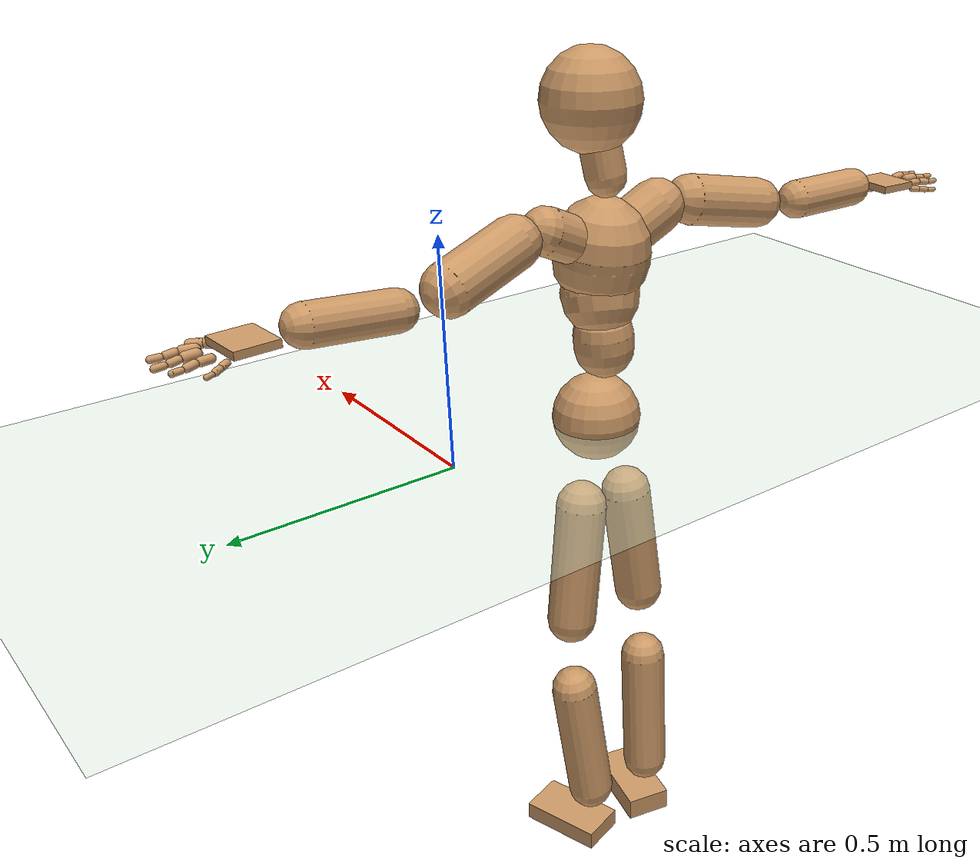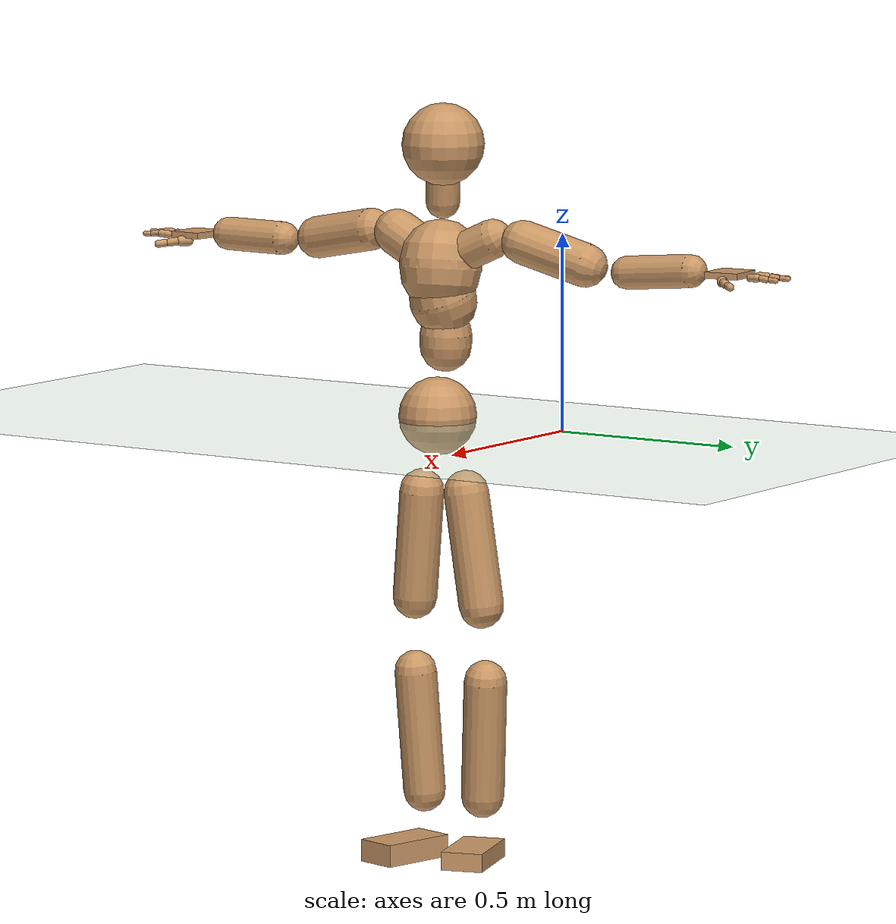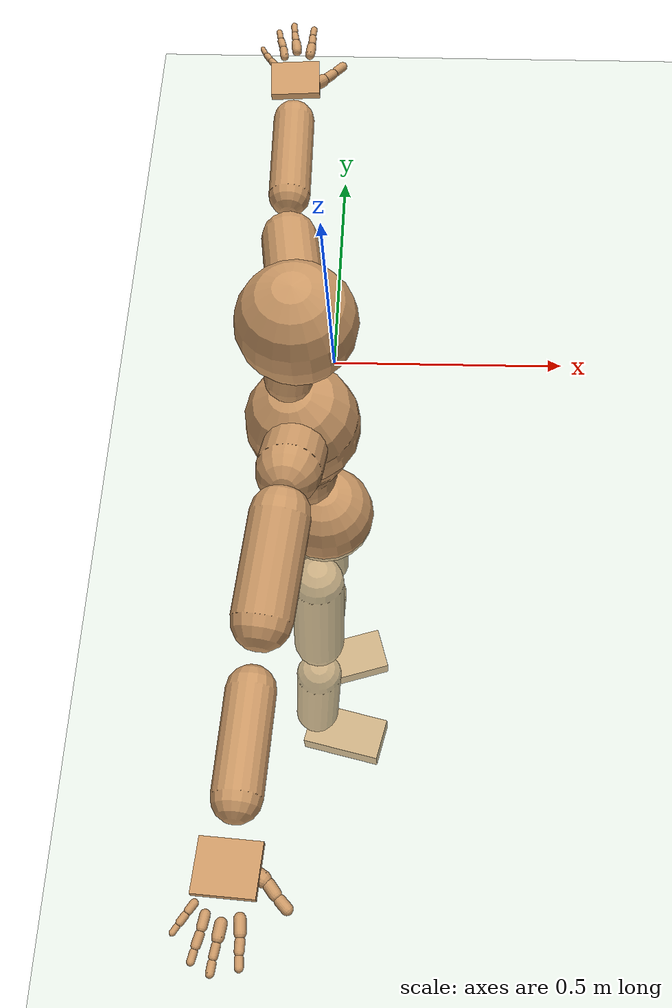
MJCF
<mujoco model="humanoid">
  <compiler coordinate="local" angle="radian"/>
  <default>
    <joint damping="0.0" armature="0.01" stiffness="0.0" limited="true"/>
    <geom conaffinity="1" condim="3" contype="7" margin="0.001" rgba="0.8 0.6 .4 1"/>
  </default>
  <asset>
    <texture type="skybox" builtin="gradient" rgb1=".4 .5 .6" rgb2="0 0 0" width="100" height="100"/>
    <texture builtin="flat" height="1278" mark="cross" markrgb="1 1 1" name="texgeom" random="0.01" rgb1="0.8 0.6 0.4" rgb2="0.8 0.6 0.4" type="cube" width="127"/>
    <texture builtin="checker" height="100" name="texplane" rgb1="0 0 0" rgb2="0.8 0.8 0.8" type="2d" width="100"/>
    <material name="MatPlane" reflectance="0.5" shininess="1" specular="1" texrepeat="60 60" texture="texplane"/>
    <material name="geom" texture="texgeom" texuniform="true"/>
  </asset>
  <worldbody>
    <light cutoff="100" diffuse="1 1 1" dir="-0 0 -1.3" directional="true" exponent="1" pos="0 0 1.3" specular=".1 .1 .1"/>
    <geom conaffinity="1" condim="3" name="floor" pos="0 0 0" rgba="0.8 0.9 0.8 1" size="100 100 .2" type="plane" material="MatPlane"/>
    <body name="Pelvis" pos="0.0009 -0.378 0.0106">
      <freejoint name="Pelvis"/>
      <geom type="sphere" contype="1" conaffinity="1" density="500" size="0.1002" pos="0.0000 0.0000 0.0000" name="Pelvis"/>
      <body name="L_Hip" pos="-0.0268 0.0546 -0.0993">
        <joint name="L_Hip_x" type="hinge" pos="0 0 0" axis="1 0 0" stiffness="800" damping="80" armature="0.02" range="-180.0000 180.0000"/>
        <joint name="L_Hip_y" type="hinge" pos="0 0 0" axis="0 1 0" stiffness="800" damping="80" armature="0.02" range="-180.0000 180.0000"/>
        <joint name="L_Hip_z" type="hinge" pos="0 0 0" axis="0 0 1" stiffness="800" damping="80" armature="0.02" range="-180.0000 180.0000"/>
        <geom type="capsule" contype="1" conaffinity="1" density="500" fromto="-0.0030 0.0134 -0.0970 -0.0119 0.0538 -0.3882" size="0.0581" name="L_Hip"/>
        <body name="L_Knee" pos="-0.0149 0.0672 -0.4852">
          <joint name="L_Knee_x" type="hinge" pos="0 0 0" axis="1 0 0" stiffness="800" damping="80" armature="0.02" range="-180.0000 180.0000"/>
          <joint name="L_Knee_y" type="hinge" pos="0 0 0" axis="0 1 0" stiffness="800" damping="80" armature="0.02" range="-180.0000 180.0000"/>
          <joint name="L_Knee_z" type="hinge" pos="0 0 0" axis="0 0 1" stiffness="800" damping="80" armature="0.02" range="-180.0000 180.0000"/>
          <geom type="capsule" contype="1" conaffinity="1" density="500" fromto="-0.0090 -0.0087 -0.1023 -0.0361 -0.0348 -0.4091" size="0.0554" name="L_Knee"/>
          <body name="L_Ankle" pos="-0.0452 -0.0436 -0.5114">
            <joint name="L_Ankle_x" type="hinge" pos="0 0 0" axis="1 0 0" stiffness="800" damping="80" armature="0.02" range="-180.0000 180.0000"/>
            <joint name="L_Ankle_y" type="hinge" pos="0 0 0" axis="0 1 0" stiffness="800" damping="80" armature="0.02" range="-180.0000 180.0000"/>
            <joint name="L_Ankle_z" type="hinge" pos="0 0 0" axis="0 0 1" stiffness="800" damping="80" armature="0.02" range="-180.0000 180.0000"/>
            <geom type="box" contype="1" conaffinity="1" density="500" pos="0.0745 0.0226 -0.0373" size="0.1018 0.0545 0.0237" quat="0.9892 0.0000 0.0000 0.1466" name="L_Ankle"/>
            <body name="L_Toe" pos="0.1491 0.0452 -0.0745">
              <joint name="L_Toe_x" type="hinge" pos="0 0 0" axis="1 0 0" stiffness="500" damping="50" armature="0.02" range="-180.0000 180.0000"/>
              <joint name="L_Toe_y" type="hinge" pos="0 0 0" axis="0 1 0" stiffness="500" damping="50" armature="0.02" range="-180.0000 180.0000"/>
              <joint name="L_Toe_z" type="hinge" pos="0 0 0" axis="0 0 1" stiffness="500" damping="50" armature="0.02" range="-180.0000 180.0000"/>
              <geom type="box" contype="1" conaffinity="1" density="500" pos="0.0000 0.0000 0.0358" size="0.001 0.0026 0.0011" quat="0.9886 0.0000 0.0000 0.1507" name="L_Toe"/>
            </body>
          </body>
        </body>
      </body>
      <body name="R_Hip" pos="-0.0216 -0.0562 -0.1099">
        <joint name="R_Hip_x" type="hinge" pos="0 0 0" axis="1 0 0" stiffness="800" damping="80" armature="0.02" range="-180.0000 180.0000"/>
        <joint name="R_Hip_y" type="hinge" pos="0 0 0" axis="0 1 0" stiffness="800" damping="80" armature="0.02" range="-180.0000 180.0000"/>
        <joint name="R_Hip_z" type="hinge" pos="0 0 0" axis="0 0 1" stiffness="800" damping="80" armature="0.02" range="-180.0000 180.0000"/>
        <geom type="capsule" contype="1" conaffinity="1" density="500" fromto="-0.0043 -0.0102 -0.0930 -0.0173 -0.0407 -0.3721" size="0.0575" name="R_Hip"/>
        <body name="R_Knee" pos="-0.0217 -0.0509 -0.4651">
          <joint name="R_Knee_x" type="hinge" pos="0 0 0" axis="1 0 0" stiffness="800" damping="80" armature="0.02" range="-180.0000 180.0000"/>
          <joint name="R_Knee_y" type="hinge" pos="0 0 0" axis="0 1 0" stiffness="800" damping="80" armature="0.02" range="-180.0000 180.0000"/>
          <joint name="R_Knee_z" type="hinge" pos="0 0 0" axis="0 0 1" stiffness="800" damping="80" armature="0.02" range="-180.0000 180.0000"/>
          <geom type="capsule" contype="1" conaffinity="1" density="500" fromto="-0.0085 0.0033 -0.1059 -0.0341 0.0132 -0.4235" size="0.0546" name="R_Knee"/>
          <body name="R_Ankle" pos="-0.0426 0.0165 -0.5293">
            <joint name="R_Ankle_x" type="hinge" pos="0 0 0" axis="1 0 0" stiffness="800" damping="80" armature="0.02" range="-180.0000 180.0000"/>
            <joint name="R_Ankle_y" type="hinge" pos="0 0 0" axis="0 1 0" stiffness="800" damping="80" armature="0.02" range="-180.0000 180.0000"/>
            <joint name="R_Ankle_z" type="hinge" pos="0 0 0" axis="0 0 1" stiffness="800" damping="80" armature="0.02" range="-180.0000 180.0000"/>
            <geom type="box" contype="1" conaffinity="1" density="500" pos="0.0778 -0.0183 -0.0362" size="0.1018 0.0545 0.0288" quat="0.9933 0.0000 0.0000 -0.1154" name="R_Ankle"/>
            <body name="R_Toe" pos="0.1556 -0.0366 -0.0725">
              <joint name="R_Toe_x" type="hinge" pos="0 0 0" axis="1 0 0" stiffness="500" damping="50" armature="0.02" range="-180.0000 180.0000"/>
              <joint name="R_Toe_y" type="hinge" pos="0 0 0" axis="0 1 0" stiffness="500" damping="50" armature="0.02" range="-180.0000 180.0000"/>
              <joint name="R_Toe_z" type="hinge" pos="0 0 0" axis="0 0 1" stiffness="500" damping="50" armature="0.02" range="-180.0000 180.0000"/>
              <geom type="box" contype="1" conaffinity="1" density="500" pos="0.0000 0.0000 0.0297" size="0.001 0.0026 0.0011" quat="0.9942 0.0000 0.0000 -0.1080" name="R_Toe"/>
            </body>
          </body>
        </body>
      </body>
      <body name="Torso" pos="-0.0345 -0.0009 0.1164">
        <joint name="Torso_x" type="hinge" pos="0 0 0" axis="1 0 0" stiffness="1000" damping="100" armature="0.02" range="-180.0000 180.0000"/>
        <joint name="Torso_y" type="hinge" pos="0 0 0" axis="0 1 0" stiffness="1000" damping="100" armature="0.02" range="-180.0000 180.0000"/>
        <joint name="Torso_z" type="hinge" pos="0 0 0" axis="0 0 1" stiffness="1000" damping="100" armature="0.02" range="-180.0000 180.0000"/>
        <geom type="capsule" contype="1" conaffinity="1" density="500" fromto="0.0028 0.0051 0.0914 0.0018 0.0034 0.0609" size="0.0667" name="Torso"/>
        <body name="Spine" pos="0.0046 0.0085 0.1523">
          <joint name="Spine_x" type="hinge" pos="0 0 0" axis="1 0 0" stiffness="1000" damping="100" armature="0.02" range="-180.0000 180.0000"/>
          <joint name="Spine_y" type="hinge" pos="0 0 0" axis="0 1 0" stiffness="1000" damping="100" armature="0.02" range="-180.0000 180.0000"/>
          <joint name="Spine_z" type="hinge" pos="0 0 0" axis="0 0 1" stiffness="1000" damping="100" armature="0.02" range="-180.0000 180.0000"/>
          <geom type="capsule" contype="1" conaffinity="1" density="500" fromto="0.0120 -0.0052 0.0353 0.0080 -0.0034 0.0235" size="0.0864" name="Spine"/>
          <body name="Chest" pos="0.02 -0.0086 0.0588">
            <joint name="Chest_x" type="hinge" pos="0 0 0" axis="1 0 0" stiffness="1000" damping="100" armature="0.02" range="-180.0000 180.0000"/>
            <joint name="Chest_y" type="hinge" pos="0 0 0" axis="0 1 0" stiffness="1000" damping="100" armature="0.02" range="-180.0000 180.0000"/>
            <joint name="Chest_z" type="hinge" pos="0 0 0" axis="0 0 1" stiffness="1000" damping="100" armature="0.02" range="-180.0000 180.0000"/>
            <geom type="capsule" contype="1" conaffinity="1" density="500" fromto="-0.0094 -0.0018 0.0693 -0.0063 -0.0012 0.0462" size="0.1061" name="Chest"/>
            <body name="Neck" pos="-0.0274 -0.0079 0.182">
              <joint name="Neck_x" type="hinge" pos="0 0 0" axis="1 0 0" stiffness="500" damping="50" armature="0.02" range="-180.0000 180.0000"/>
              <joint name="Neck_y" type="hinge" pos="0 0 0" axis="0 1 0" stiffness="500" damping="50" armature="0.02" range="-180.0000 180.0000"/>
              <joint name="Neck_z" type="hinge" pos="0 0 0" axis="0 0 1" stiffness="500" damping="50" armature="0.02" range="-180.0000 180.0000"/>
              <geom type="capsule" contype="1" conaffinity="1" density="500" fromto="0.0061 0.0043 0.0371 0.0244 0.0173 0.1484" size="0.0439" name="Neck"/>
              <body name="Head" pos="0.0305 0.0216 0.1855">
                <joint name="Head_x" type="hinge" pos="0 0 0" axis="1 0 0" stiffness="500" damping="50" armature="0.02" range="-180.0000 180.0000"/>
                <joint name="Head_y" type="hinge" pos="0 0 0" axis="0 1 0" stiffness="500" damping="50" armature="0.02" range="-180.0000 180.0000"/>
                <joint name="Head_z" type="hinge" pos="0 0 0" axis="0 0 1" stiffness="500" damping="50" armature="0.02" range="-180.0000 180.0000"/>
                <geom type="sphere" contype="1" conaffinity="1" density="500" size="0.1054" pos="0.0000 0.0000 0.0000" name="Head"/>
              </body>
            </body>
            <body name="L_Thorax" pos="-0.0079 0.0418 0.0821">
              <joint name="L_Thorax_x" type="hinge" pos="0 0 0" axis="1 0 0" stiffness="500" damping="50" armature="0.02" range="-180.0000 180.0000"/>
              <joint name="L_Thorax_y" type="hinge" pos="0 0 0" axis="0 1 0" stiffness="500" damping="50" armature="0.02" range="-180.0000 180.0000"/>
              <joint name="L_Thorax_z" type="hinge" pos="0 0 0" axis="0 0 1" stiffness="500" damping="50" armature="0.02" range="-180.0000 180.0000"/>
              <geom type="capsule" contype="1" conaffinity="1" density="500" fromto="-0.0029 0.0269 0.0126 -0.0116 0.1076 0.0505" size="0.0507" name="L_Thorax"/>
              <body name="L_Shoulder" pos="-0.0144 0.1345 0.0631">
                <joint name="L_Shoulder_x" type="hinge" pos="0 0 0" axis="1 0 0" stiffness="500" damping="50" armature="0.02" range="-180.0000 180.0000"/>
                <joint name="L_Shoulder_y" type="hinge" pos="0 0 0" axis="0 1 0" stiffness="500" damping="50" armature="0.02" range="-180.0000 180.0000"/>
                <joint name="L_Shoulder_z" type="hinge" pos="0 0 0" axis="0 0 1" stiffness="500" damping="50" armature="0.02" range="-180.0000 180.0000"/>
                <geom type="capsule" contype="1" conaffinity="1" density="500" fromto="-0.0091 0.0568 -0.0169 -0.0362 0.2274 -0.0676" size="0.0558" name="L_Shoulder"/>
                <body name="L_Elbow" pos="-0.0453 0.2842 -0.0845">
                  <joint name="L_Elbow_x" type="hinge" pos="0 0 0" axis="1 0 0" stiffness="500" damping="50" armature="0.02" range="-720.0000 720.0000"/>
                  <joint name="L_Elbow_y" type="hinge" pos="0 0 0" axis="0 1 0" stiffness="500" damping="50" armature="0.02" range="-720.0000 720.0000"/>
                  <joint name="L_Elbow_z" type="hinge" pos="0 0 0" axis="0 0 1" stiffness="500" damping="50" armature="0.02" range="-720.0000 720.0000"/>
                  <geom type="capsule" contype="1" conaffinity="1" density="500" fromto="-0.0005 0.0613 0.0052 -0.0020 0.2452 0.0209" size="0.0421" name="L_Elbow"/>
                  <body name="L_Wrist" pos="-0.0025 0.3065 0.0261">
                    <joint name="L_Wrist_x" type="hinge" pos="0 0 0" axis="1 0 0" stiffness="300" damping="30" armature="0.02" range="-180.0000 180.0000"/>
                    <joint name="L_Wrist_y" type="hinge" pos="0 0 0" axis="0 1 0" stiffness="300" damping="30" armature="0.02" range="-180.0000 180.0000"/>
                    <joint name="L_Wrist_z" type="hinge" pos="0 0 0" axis="0 0 1" stiffness="300" damping="30" armature="0.02" range="-180.0000 180.0000"/>
                    <geom type="box" contype="1" conaffinity="1" density="500" pos="-0.0034 0.0507 -0.0060" size="0.0446 0.0504 0.008" quat="0.7303 0.0000 0.0000 -0.6832" name="L_Wrist"/>
                    <body name="L_Index1" pos="0.0215 0.1184 -0.0086">
                      <joint name="L_Index1_x" type="hinge" pos="0 0 0" axis="1 0 0" stiffness="100" damping="10" armature="0.02" range="-180.0000 180.0000"/>
                      <joint name="L_Index1_y" type="hinge" pos="0 0 0" axis="0 1 0" stiffness="100" damping="10" armature="0.02" range="-180.0000 180.0000"/>
                      <joint name="L_Index1_z" type="hinge" pos="0 0 0" axis="0 0 1" stiffness="100" damping="10" armature="0.02" range="-180.0000 180.0000"/>
                      <geom type="capsule" contype="1" conaffinity="1" density="500" fromto="0.0007 0.0071 0.0004 0.0030 0.0283 0.0014" size="0.0099" name="L_Index1"/>
                      <body name="L_Index2" pos="0.0037 0.0354 0.0018">
                        <joint name="L_Index2_x" type="hinge" pos="0 0 0" axis="1 0 0" stiffness="100" damping="10" armature="0.02" range="-180.0000 180.0000"/>
                        <joint name="L_Index2_y" type="hinge" pos="0 0 0" axis="0 1 0" stiffness="100" damping="10" armature="0.02" range="-180.0000 180.0000"/>
                        <joint name="L_Index2_z" type="hinge" pos="0 0 0" axis="0 0 1" stiffness="100" damping="10" armature="0.02" range="-180.0000 180.0000"/>
                        <geom type="capsule" contype="1" conaffinity="1" density="500" fromto="-0.0000 0.0050 -0.0005 -0.0001 0.0200 -0.0022" size="0.0081" name="L_Index2"/>
                        <body name="L_Index3" pos="-0.0001 0.025 -0.0027">
                          <joint name="L_Index3_x" type="hinge" pos="0 0 0" axis="1 0 0" stiffness="100" damping="10" armature="0.02" range="-180.0000 180.0000"/>
                          <joint name="L_Index3_y" type="hinge" pos="0 0 0" axis="0 1 0" stiffness="100" damping="10" armature="0.02" range="-180.0000 180.0000"/>
                          <joint name="L_Index3_z" type="hinge" pos="0 0 0" axis="0 0 1" stiffness="100" damping="10" armature="0.02" range="-180.0000 180.0000"/>
                          <geom type="capsule" contype="1" conaffinity="1" density="500" fromto="0.0004 0.0054 -0.0001 0.0015 0.0216 -0.0006" size="0.0069" name="L_Index3"/>
                        </body>
                      </body>
                    </body>
                    <body name="L_Middle1" pos="-0.0048 0.1271 -0.0061">
                      <joint name="L_Middle1_x" type="hinge" pos="0 0 0" axis="1 0 0" stiffness="100" damping="10" armature="0.02" range="-180.0000 180.0000"/>
                      <joint name="L_Middle1_y" type="hinge" pos="0 0 0" axis="0 1 0" stiffness="100" damping="10" armature="0.02" range="-180.0000 180.0000"/>
                      <joint name="L_Middle1_z" type="hinge" pos="0 0 0" axis="0 0 1" stiffness="100" damping="10" armature="0.02" range="-180.0000 180.0000"/>
                      <geom type="capsule" contype="1" conaffinity="1" density="500" fromto="-0.0010 0.0068 0.0001 -0.0039 0.0270 0.0003" size="0.0101" name="L_Middle1"/>
                      <body name="L_Middle2" pos="-0.0049 0.0338 0.0003">
                        <joint name="L_Middle2_x" type="hinge" pos="0 0 0" axis="1 0 0" stiffness="100" damping="10" armature="0.02" range="-180.0000 180.0000"/>
                        <joint name="L_Middle2_y" type="hinge" pos="0 0 0" axis="0 1 0" stiffness="100" damping="10" armature="0.02" range="-180.0000 180.0000"/>
                        <joint name="L_Middle2_z" type="hinge" pos="0 0 0" axis="0 0 1" stiffness="100" damping="10" armature="0.02" range="-180.0000 180.0000"/>
                        <geom type="capsule" contype="1" conaffinity="1" density="500" fromto="-0.0009 0.0052 -0.0006 -0.0038 0.0209 -0.0022" size="0.0074" name="L_Middle2"/>
                        <body name="L_Middle3" pos="-0.0047 0.0261 -0.0028">
                          <joint name="L_Middle3_x" type="hinge" pos="0 0 0" axis="1 0 0" stiffness="100" damping="10" armature="0.02" range="-180.0000 180.0000"/>
                          <joint name="L_Middle3_y" type="hinge" pos="0 0 0" axis="0 1 0" stiffness="100" damping="10" armature="0.02" range="-180.0000 180.0000"/>
                          <joint name="L_Middle3_z" type="hinge" pos="0 0 0" axis="0 0 1" stiffness="100" damping="10" armature="0.02" range="-180.0000 180.0000"/>
                          <geom type="capsule" contype="1" conaffinity="1" density="500" fromto="-0.0005 0.0056 -0.0002 -0.0022 0.0225 -0.0006" size="0.0067" name="L_Middle3"/>
                        </body>
                      </body>
                    </body>
                    <body name="L_Pinky1" pos="-0.049 0.0992 -0.0154">
                      <joint name="L_Pinky1_x" type="hinge" pos="0 0 0" axis="1 0 0" stiffness="100" damping="10" armature="0.02" range="-180.0000 180.0000"/>
                      <joint name="L_Pinky1_y" type="hinge" pos="0 0 0" axis="0 1 0" stiffness="100" damping="10" armature="0.02" range="-180.0000 180.0000"/>
                      <joint name="L_Pinky1_z" type="hinge" pos="0 0 0" axis="0 0 1" stiffness="100" damping="10" armature="0.02" range="-180.0000 180.0000"/>
                      <geom type="capsule" contype="1" conaffinity="1" density="500" fromto="-0.0025 0.0035 -0.0003 -0.0101 0.0142 -0.0013" size="0.0071" name="L_Pinky1"/>
                      <body name="L_Pinky2" pos="-0.0126 0.0177 -0.0016">
                        <joint name="L_Pinky2_x" type="hinge" pos="0 0 0" axis="1 0 0" stiffness="100" damping="10" armature="0.02" range="-180.0000 180.0000"/>
                        <joint name="L_Pinky2_y" type="hinge" pos="0 0 0" axis="0 1 0" stiffness="100" damping="10" armature="0.02" range="-180.0000 180.0000"/>
                        <joint name="L_Pinky2_z" type="hinge" pos="0 0 0" axis="0 0 1" stiffness="100" damping="10" armature="0.02" range="-180.0000 180.0000"/>
                        <geom type="capsule" contype="1" conaffinity="1" density="500" fromto="-0.0023 0.0035 -0.0004 -0.0094 0.0139 -0.0015" size="0.0067" name="L_Pinky2"/>
                        <body name="L_Pinky3" pos="-0.0117 0.0174 -0.0019">
                          <joint name="L_Pinky3_x" type="hinge" pos="0 0 0" axis="1 0 0" stiffness="100" damping="10" armature="0.02" range="-180.0000 180.0000"/>
                          <joint name="L_Pinky3_y" type="hinge" pos="0 0 0" axis="0 1 0" stiffness="100" damping="10" armature="0.02" range="-180.0000 180.0000"/>
                          <joint name="L_Pinky3_z" type="hinge" pos="0 0 0" axis="0 0 1" stiffness="100" damping="10" armature="0.02" range="-180.0000 180.0000"/>
                          <geom type="capsule" contype="1" conaffinity="1" density="500" fromto="-0.0019 0.0039 0.0000 -0.0078 0.0155 0.0001" size="0.0051" name="L_Pinky3"/>
                        </body>
                      </body>
                    </body>
                    <body name="L_Ring1" pos="-0.0308 0.114 -0.0095">
                      <joint name="L_Ring1_x" type="hinge" pos="0 0 0" axis="1 0 0" stiffness="100" damping="10" armature="0.02" range="-180.0000 180.0000"/>
                      <joint name="L_Ring1_y" type="hinge" pos="0 0 0" axis="0 1 0" stiffness="100" damping="10" armature="0.02" range="-180.0000 180.0000"/>
                      <joint name="L_Ring1_z" type="hinge" pos="0 0 0" axis="0 0 1" stiffness="100" damping="10" armature="0.02" range="-180.0000 180.0000"/>
                      <geom type="capsule" contype="1" conaffinity="1" density="500" fromto="-0.0011 0.0063 0.0001 -0.0043 0.0251 0.0005" size="0.0085" name="L_Ring1"/>
                      <body name="L_Ring2" pos="-0.0054 0.0314 0.0006">
                        <joint name="L_Ring2_x" type="hinge" pos="0 0 0" axis="1 0 0" stiffness="100" damping="10" armature="0.02" range="-180.0000 180.0000"/>
                        <joint name="L_Ring2_y" type="hinge" pos="0 0 0" axis="0 1 0" stiffness="100" damping="10" armature="0.02" range="-180.0000 180.0000"/>
                        <joint name="L_Ring2_z" type="hinge" pos="0 0 0" axis="0 0 1" stiffness="100" damping="10" armature="0.02" range="-180.0000 180.0000"/>
                        <geom type="capsule" contype="1" conaffinity="1" density="500" fromto="-0.0015 0.0051 -0.0005 -0.0058 0.0203 -0.0020" size="0.0079" name="L_Ring2"/>
                        <body name="L_Ring3" pos="-0.0073 0.0254 -0.0025">
                          <joint name="L_Ring3_x" type="hinge" pos="0 0 0" axis="1 0 0" stiffness="100" damping="10" armature="0.02" range="-180.0000 180.0000"/>
                          <joint name="L_Ring3_y" type="hinge" pos="0 0 0" axis="0 1 0" stiffness="100" damping="10" armature="0.02" range="-180.0000 180.0000"/>
                          <joint name="L_Ring3_z" type="hinge" pos="0 0 0" axis="0 0 1" stiffness="100" damping="10" armature="0.02" range="-180.0000 180.0000"/>
                          <geom type="capsule" contype="1" conaffinity="1" density="500" fromto="-0.0011 0.0055 -0.0001 -0.0042 0.0219 -0.0004" size="0.0062" name="L_Ring3"/>
                        </body>
                      </body>
                    </body>
                    <body name="L_Thumb1" pos="0.0292 0.0481 -0.0204">
                      <joint name="L_Thumb1_x" type="hinge" pos="0 0 0" axis="1 0 0" stiffness="100" damping="10" armature="0.02" range="-180.0000 180.0000"/>
                      <joint name="L_Thumb1_y" type="hinge" pos="0 0 0" axis="0 1 0" stiffness="100" damping="10" armature="0.02" range="-180.0000 180.0000"/>
                      <joint name="L_Thumb1_z" type="hinge" pos="0 0 0" axis="0 0 1" stiffness="100" damping="10" armature="0.02" range="-180.0000 180.0000"/>
                      <geom type="capsule" contype="1" conaffinity="1" density="500" fromto="0.0058 0.0038 0.0003 0.0231 0.0151 0.0011" size="0.0134" name="L_Thumb1"/>
                      <body name="L_Thumb2" pos="0.0288 0.0188 0.0013">
                        <joint name="L_Thumb2_x" type="hinge" pos="0 0 0" axis="1 0 0" stiffness="100" damping="10" armature="0.02" range="-180.0000 180.0000"/>
                        <joint name="L_Thumb2_y" type="hinge" pos="0 0 0" axis="0 1 0" stiffness="100" damping="10" armature="0.02" range="-180.0000 180.0000"/>
                        <joint name="L_Thumb2_z" type="hinge" pos="0 0 0" axis="0 0 1" stiffness="100" damping="10" armature="0.02" range="-180.0000 180.0000"/>
                        <geom type="capsule" contype="1" conaffinity="1" density="500" fromto="0.0036 0.0046 -0.0009 0.0145 0.0184 -0.0038" size="0.0105" name="L_Thumb2"/>
                        <body name="L_Thumb3" pos="0.0181 0.023 -0.0047">
                          <joint name="L_Thumb3_x" type="hinge" pos="0 0 0" axis="1 0 0" stiffness="100" damping="10" armature="0.02" range="-180.0000 180.0000"/>
                          <joint name="L_Thumb3_y" type="hinge" pos="0 0 0" axis="0 1 0" stiffness="100" damping="10" armature="0.02" range="-180.0000 180.0000"/>
                          <joint name="L_Thumb3_z" type="hinge" pos="0 0 0" axis="0 0 1" stiffness="100" damping="10" armature="0.02" range="-180.0000 180.0000"/>
                          <geom type="capsule" contype="1" conaffinity="1" density="500" fromto="0.0040 0.0050 -0.0005 0.0161 0.0200 -0.0022" size="0.0096" name="L_Thumb3"/>
                        </body>
                      </body>
                    </body>
                  </body>
                </body>
              </body>
            </body>
            <body name="R_Thorax" pos="-0.0119 -0.0431 0.0824">
              <joint name="R_Thorax_x" type="hinge" pos="0 0 0" axis="1 0 0" stiffness="500" damping="50" armature="0.02" range="-180.0000 180.0000"/>
              <joint name="R_Thorax_y" type="hinge" pos="0 0 0" axis="0 1 0" stiffness="500" damping="50" armature="0.02" range="-180.0000 180.0000"/>
              <joint name="R_Thorax_z" type="hinge" pos="0 0 0" axis="0 0 1" stiffness="500" damping="50" armature="0.02" range="-180.0000 180.0000"/>
              <geom type="capsule" contype="1" conaffinity="1" density="500" fromto="-0.0018 -0.0250 0.0125 -0.0073 -0.1000 0.0502" size="0.0594" name="R_Thorax"/>
              <body name="R_Shoulder" pos="-0.0091 -0.125 0.0627">
                <joint name="R_Shoulder_x" type="hinge" pos="0 0 0" axis="1 0 0" stiffness="500" damping="50" armature="0.02" range="-180.0000 180.0000"/>
                <joint name="R_Shoulder_y" type="hinge" pos="0 0 0" axis="0 1 0" stiffness="500" damping="50" armature="0.02" range="-180.0000 180.0000"/>
                <joint name="R_Shoulder_z" type="hinge" pos="0 0 0" axis="0 0 1" stiffness="500" damping="50" armature="0.02" range="-180.0000 180.0000"/>
                <geom type="capsule" contype="1" conaffinity="1" density="500" fromto="-0.0070 -0.0606 -0.0112 -0.0281 -0.2423 -0.0449" size="0.0546" name="R_Shoulder"/>
                <body name="R_Elbow" pos="-0.0351 -0.3029 -0.0561">
                  <joint name="R_Elbow_x" type="hinge" pos="0 0 0" axis="1 0 0" stiffness="500" damping="50" armature="0.02" range="-720.0000 720.0000"/>
                  <joint name="R_Elbow_y" type="hinge" pos="0 0 0" axis="0 1 0" stiffness="500" damping="50" armature="0.02" range="-720.0000 720.0000"/>
                  <joint name="R_Elbow_z" type="hinge" pos="0 0 0" axis="0 0 1" stiffness="500" damping="50" armature="0.02" range="-720.0000 720.0000"/>
                  <geom type="capsule" contype="1" conaffinity="1" density="500" fromto="-0.0027 -0.0593 0.0003 -0.0107 -0.2370 0.0012" size="0.0432" name="R_Elbow"/>
                  <body name="R_Wrist" pos="-0.0134 -0.2963 0.0015">
                    <joint name="R_Wrist_x" type="hinge" pos="0 0 0" axis="1 0 0" stiffness="300" damping="30" armature="0.02" range="-180.0000 180.0000"/>
                    <joint name="R_Wrist_y" type="hinge" pos="0 0 0" axis="0 1 0" stiffness="300" damping="30" armature="0.02" range="-180.0000 180.0000"/>
                    <joint name="R_Wrist_z" type="hinge" pos="0 0 0" axis="0 0 1" stiffness="300" damping="30" armature="0.02" range="-180.0000 180.0000"/>
                    <geom type="box" contype="1" conaffinity="1" density="500" pos="-0.0037 -0.0503 -0.0079" size="0.0446 0.0518 0.0082" quat="0.7328 0.0000 0.0000 0.6805" name="R_Wrist"/>
                    <body name="R_Index1" pos="0.0208 -0.1177 -0.0123">
                      <joint name="R_Index1_x" type="hinge" pos="0 0 0" axis="1 0 0" stiffness="100" damping="10" armature="0.02" range="-180.0000 180.0000"/>
                      <joint name="R_Index1_y" type="hinge" pos="0 0 0" axis="0 1 0" stiffness="100" damping="10" armature="0.02" range="-180.0000 180.0000"/>
                      <joint name="R_Index1_z" type="hinge" pos="0 0 0" axis="0 0 1" stiffness="100" damping="10" armature="0.02" range="-180.0000 180.0000"/>
                      <geom type="capsule" contype="1" conaffinity="1" density="500" fromto="0.0007 -0.0071 0.0004 0.0030 -0.0283 0.0014" size="0.0099" name="R_Index1"/>
                      <body name="R_Index2" pos="0.0037 -0.0354 0.0018">
                        <joint name="R_Index2_x" type="hinge" pos="0 0 0" axis="1 0 0" stiffness="100" damping="10" armature="0.02" range="-180.0000 180.0000"/>
                        <joint name="R_Index2_y" type="hinge" pos="0 0 0" axis="0 1 0" stiffness="100" damping="10" armature="0.02" range="-180.0000 180.0000"/>
                        <joint name="R_Index2_z" type="hinge" pos="0 0 0" axis="0 0 1" stiffness="100" damping="10" armature="0.02" range="-180.0000 180.0000"/>
                        <geom type="capsule" contype="1" conaffinity="1" density="500" fromto="-0.0000 -0.0050 -0.0005 -0.0001 -0.0200 -0.0022" size="0.0081" name="R_Index2"/>
                        <body name="R_Index3" pos="-0.0001 -0.025 -0.0027">
                          <joint name="R_Index3_x" type="hinge" pos="0 0 0" axis="1 0 0" stiffness="100" damping="10" armature="0.02" range="-180.0000 180.0000"/>
                          <joint name="R_Index3_y" type="hinge" pos="0 0 0" axis="0 1 0" stiffness="100" damping="10" armature="0.02" range="-180.0000 180.0000"/>
                          <joint name="R_Index3_z" type="hinge" pos="0 0 0" axis="0 0 1" stiffness="100" damping="10" armature="0.02" range="-180.0000 180.0000"/>
                          <geom type="capsule" contype="1" conaffinity="1" density="500" fromto="0.0004 -0.0046 -0.0001 0.0015 -0.0184 -0.0006" size="0.0072" name="R_Index3"/>
                        </body>
                      </body>
                    </body>
                    <body name="R_Middle1" pos="-0.0055 -0.1264 -0.0098">
                      <joint name="R_Middle1_x" type="hinge" pos="0 0 0" axis="1 0 0" stiffness="100" damping="10" armature="0.02" range="-180.0000 180.0000"/>
                      <joint name="R_Middle1_y" type="hinge" pos="0 0 0" axis="0 1 0" stiffness="100" damping="10" armature="0.02" range="-180.0000 180.0000"/>
                      <joint name="R_Middle1_z" type="hinge" pos="0 0 0" axis="0 0 1" stiffness="100" damping="10" armature="0.02" range="-180.0000 180.0000"/>
                      <geom type="capsule" contype="1" conaffinity="1" density="500" fromto="-0.0010 -0.0068 0.0001 -0.0039 -0.0270 0.0003" size="0.0101" name="R_Middle1"/>
                      <body name="R_Middle2" pos="-0.0049 -0.0338 0.0003">
                        <joint name="R_Middle2_x" type="hinge" pos="0 0 0" axis="1 0 0" stiffness="100" damping="10" armature="0.02" range="-180.0000 180.0000"/>
                        <joint name="R_Middle2_y" type="hinge" pos="0 0 0" axis="0 1 0" stiffness="100" damping="10" armature="0.02" range="-180.0000 180.0000"/>
                        <joint name="R_Middle2_z" type="hinge" pos="0 0 0" axis="0 0 1" stiffness="100" damping="10" armature="0.02" range="-180.0000 180.0000"/>
                        <geom type="capsule" contype="1" conaffinity="1" density="500" fromto="-0.0009 -0.0052 -0.0006 -0.0038 -0.0209 -0.0022" size="0.0074" name="R_Middle2"/>
                        <body name="R_Middle3" pos="-0.0047 -0.0261 -0.0028">
                          <joint name="R_Middle3_x" type="hinge" pos="0 0 0" axis="1 0 0" stiffness="100" damping="10" armature="0.02" range="-180.0000 180.0000"/>
                          <joint name="R_Middle3_y" type="hinge" pos="0 0 0" axis="0 1 0" stiffness="100" damping="10" armature="0.02" range="-180.0000 180.0000"/>
                          <joint name="R_Middle3_z" type="hinge" pos="0 0 0" axis="0 0 1" stiffness="100" damping="10" armature="0.02" range="-180.0000 180.0000"/>
                          <geom type="capsule" contype="1" conaffinity="1" density="500" fromto="-0.0005 -0.0048 -0.0002 -0.0022 -0.0193 -0.0006" size="0.007" name="R_Middle3"/>
                        </body>
                      </body>
                    </body>
                    <body name="R_Pinky1" pos="-0.0497 -0.0985 -0.0191">
                      <joint name="R_Pinky1_x" type="hinge" pos="0 0 0" axis="1 0 0" stiffness="100" damping="10" armature="0.02" range="-180.0000 180.0000"/>
                      <joint name="R_Pinky1_y" type="hinge" pos="0 0 0" axis="0 1 0" stiffness="100" damping="10" armature="0.02" range="-180.0000 180.0000"/>
                      <joint name="R_Pinky1_z" type="hinge" pos="0 0 0" axis="0 0 1" stiffness="100" damping="10" armature="0.02" range="-180.0000 180.0000"/>
                      <geom type="capsule" contype="1" conaffinity="1" density="500" fromto="-0.0025 -0.0035 -0.0003 -0.0101 -0.0142 -0.0013" size="0.0071" name="R_Pinky1"/>
                      <body name="R_Pinky2" pos="-0.0126 -0.0177 -0.0016">
                        <joint name="R_Pinky2_x" type="hinge" pos="0 0 0" axis="1 0 0" stiffness="100" damping="10" armature="0.02" range="-180.0000 180.0000"/>
                        <joint name="R_Pinky2_y" type="hinge" pos="0 0 0" axis="0 1 0" stiffness="100" damping="10" armature="0.02" range="-180.0000 180.0000"/>
                        <joint name="R_Pinky2_z" type="hinge" pos="0 0 0" axis="0 0 1" stiffness="100" damping="10" armature="0.02" range="-180.0000 180.0000"/>
                        <geom type="capsule" contype="1" conaffinity="1" density="500" fromto="-0.0023 -0.0035 -0.0004 -0.0094 -0.0139 -0.0015" size="0.0067" name="R_Pinky2"/>
                        <body name="R_Pinky3" pos="-0.0117 -0.0174 -0.0019">
                          <joint name="R_Pinky3_x" type="hinge" pos="0 0 0" axis="1 0 0" stiffness="100" damping="10" armature="0.02" range="-180.0000 180.0000"/>
                          <joint name="R_Pinky3_y" type="hinge" pos="0 0 0" axis="0 1 0" stiffness="100" damping="10" armature="0.02" range="-180.0000 180.0000"/>
                          <joint name="R_Pinky3_z" type="hinge" pos="0 0 0" axis="0 0 1" stiffness="100" damping="10" armature="0.02" range="-180.0000 180.0000"/>
                          <geom type="capsule" contype="1" conaffinity="1" density="500" fromto="-0.0019 -0.0031 0.0000 -0.0078 -0.0123 0.0001" size="0.0054" name="R_Pinky3"/>
                        </body>
                      </body>
                    </body>
                    <body name="R_Ring1" pos="-0.0315 -0.1133 -0.0132">
                      <joint name="R_Ring1_x" type="hinge" pos="0 0 0" axis="1 0 0" stiffness="100" damping="10" armature="0.02" range="-180.0000 180.0000"/>
                      <joint name="R_Ring1_y" type="hinge" pos="0 0 0" axis="0 1 0" stiffness="100" damping="10" armature="0.02" range="-180.0000 180.0000"/>
                      <joint name="R_Ring1_z" type="hinge" pos="0 0 0" axis="0 0 1" stiffness="100" damping="10" armature="0.02" range="-180.0000 180.0000"/>
                      <geom type="capsule" contype="1" conaffinity="1" density="500" fromto="-0.0011 -0.0063 0.0001 -0.0043 -0.0251 0.0005" size="0.0085" name="R_Ring1"/>
                      <body name="R_Ring2" pos="-0.0054 -0.0314 0.0006">
                        <joint name="R_Ring2_x" type="hinge" pos="0 0 0" axis="1 0 0" stiffness="100" damping="10" armature="0.02" range="-180.0000 180.0000"/>
                        <joint name="R_Ring2_y" type="hinge" pos="0 0 0" axis="0 1 0" stiffness="100" damping="10" armature="0.02" range="-180.0000 180.0000"/>
                        <joint name="R_Ring2_z" type="hinge" pos="0 0 0" axis="0 0 1" stiffness="100" damping="10" armature="0.02" range="-180.0000 180.0000"/>
                        <geom type="capsule" contype="1" conaffinity="1" density="500" fromto="-0.0015 -0.0051 -0.0005 -0.0058 -0.0203 -0.0020" size="0.0079" name="R_Ring2"/>
                        <body name="R_Ring3" pos="-0.0073 -0.0254 -0.0025">
                          <joint name="R_Ring3_x" type="hinge" pos="0 0 0" axis="1 0 0" stiffness="100" damping="10" armature="0.02" range="-180.0000 180.0000"/>
                          <joint name="R_Ring3_y" type="hinge" pos="0 0 0" axis="0 1 0" stiffness="100" damping="10" armature="0.02" range="-180.0000 180.0000"/>
                          <joint name="R_Ring3_z" type="hinge" pos="0 0 0" axis="0 0 1" stiffness="100" damping="10" armature="0.02" range="-180.0000 180.0000"/>
                          <geom type="capsule" contype="1" conaffinity="1" density="500" fromto="-0.0011 -0.0047 -0.0001 -0.0042 -0.0187 -0.0004" size="0.0065" name="R_Ring3"/>
                        </body>
                      </body>
                    </body>
                    <body name="R_Thumb1" pos="0.0285 -0.0474 -0.0242">
                      <joint name="R_Thumb1_x" type="hinge" pos="0 0 0" axis="1 0 0" stiffness="100" damping="10" armature="0.02" range="-180.0000 180.0000"/>
                      <joint name="R_Thumb1_y" type="hinge" pos="0 0 0" axis="0 1 0" stiffness="100" damping="10" armature="0.02" range="-180.0000 180.0000"/>
                      <joint name="R_Thumb1_z" type="hinge" pos="0 0 0" axis="0 0 1" stiffness="100" damping="10" armature="0.02" range="-180.0000 180.0000"/>
                      <geom type="capsule" contype="1" conaffinity="1" density="500" fromto="0.0058 -0.0038 0.0003 0.0231 -0.0151 0.0011" size="0.0134" name="R_Thumb1"/>
                      <body name="R_Thumb2" pos="0.0288 -0.0188 0.0013">
                        <joint name="R_Thumb2_x" type="hinge" pos="0 0 0" axis="1 0 0" stiffness="100" damping="10" armature="0.02" range="-180.0000 180.0000"/>
                        <joint name="R_Thumb2_y" type="hinge" pos="0 0 0" axis="0 1 0" stiffness="100" damping="10" armature="0.02" range="-180.0000 180.0000"/>
                        <joint name="R_Thumb2_z" type="hinge" pos="0 0 0" axis="0 0 1" stiffness="100" damping="10" armature="0.02" range="-180.0000 180.0000"/>
                        <geom type="capsule" contype="1" conaffinity="1" density="500" fromto="0.0036 -0.0046 -0.0009 0.0145 -0.0184 -0.0038" size="0.0105" name="R_Thumb2"/>
                        <body name="R_Thumb3" pos="0.0181 -0.023 -0.0047">
                          <joint name="R_Thumb3_x" type="hinge" pos="0 0 0" axis="1 0 0" stiffness="100" damping="10" armature="0.02" range="-180.0000 180.0000"/>
                          <joint name="R_Thumb3_y" type="hinge" pos="0 0 0" axis="0 1 0" stiffness="100" damping="10" armature="0.02" range="-180.0000 180.0000"/>
                          <joint name="R_Thumb3_z" type="hinge" pos="0 0 0" axis="0 0 1" stiffness="100" damping="10" armature="0.02" range="-180.0000 180.0000"/>
                          <geom type="capsule" contype="1" conaffinity="1" density="500" fromto="0.0040 -0.0042 -0.0005 0.0161 -0.0168 -0.0022" size="0.0098" name="R_Thumb3"/>
                        </body>
                      </body>
                    </body>
                  </body>
                </body>
              </body>
            </body>
          </body>
        </body>
      </body>
    </body>
  </worldbody>
  <actuator>
    <motor name="L_Hip_x" joint="L_Hip_x" gear="500"/>
    <motor name="L_Hip_y" joint="L_Hip_y" gear="500"/>
    <motor name="L_Hip_z" joint="L_Hip_z" gear="500"/>
    <motor name="L_Knee_x" joint="L_Knee_x" gear="500"/>
    <motor name="L_Knee_y" joint="L_Knee_y" gear="500"/>
    <motor name="L_Knee_z" joint="L_Knee_z" gear="500"/>
    <motor name="L_Ankle_x" joint="L_Ankle_x" gear="500"/>
    <motor name="L_Ankle_y" joint="L_Ankle_y" gear="500"/>
    <motor name="L_Ankle_z" joint="L_Ankle_z" gear="500"/>
    <motor name="L_Toe_x" joint="L_Toe_x" gear="500"/>
    <motor name="L_Toe_y" joint="L_Toe_y" gear="500"/>
    <motor name="L_Toe_z" joint="L_Toe_z" gear="500"/>
    <motor name="R_Hip_x" joint="R_Hip_x" gear="500"/>
    <motor name="R_Hip_y" joint="R_Hip_y" gear="500"/>
    <motor name="R_Hip_z" joint="R_Hip_z" gear="500"/>
    <motor name="R_Knee_x" joint="R_Knee_x" gear="500"/>
    <motor name="R_Knee_y" joint="R_Knee_y" gear="500"/>
    <motor name="R_Knee_z" joint="R_Knee_z" gear="500"/>
    <motor name="R_Ankle_x" joint="R_Ankle_x" gear="500"/>
    <motor name="R_Ankle_y" joint="R_Ankle_y" gear="500"/>
    <motor name="R_Ankle_z" joint="R_Ankle_z" gear="500"/>
    <motor name="R_Toe_x" joint="R_Toe_x" gear="500"/>
    <motor name="R_Toe_y" joint="R_Toe_y" gear="500"/>
    <motor name="R_Toe_z" joint="R_Toe_z" gear="500"/>
    <motor name="Torso_x" joint="Torso_x" gear="500"/>
    <motor name="Torso_y" joint="Torso_y" gear="500"/>
    <motor name="Torso_z" joint="Torso_z" gear="500"/>
    <motor name="Spine_x" joint="Spine_x" gear="500"/>
    <motor name="Spine_y" joint="Spine_y" gear="500"/>
    <motor name="Spine_z" joint="Spine_z" gear="500"/>
    <motor name="Chest_x" joint="Chest_x" gear="500"/>
    <motor name="Chest_y" joint="Chest_y" gear="500"/>
    <motor name="Chest_z" joint="Chest_z" gear="500"/>
    <motor name="Neck_x" joint="Neck_x" gear="500"/>
    <motor name="Neck_y" joint="Neck_y" gear="500"/>
    <motor name="Neck_z" joint="Neck_z" gear="500"/>
    <motor name="Head_x" joint="Head_x" gear="500"/>
    <motor name="Head_y" joint="Head_y" gear="500"/>
    <motor name="Head_z" joint="Head_z" gear="500"/>
    <motor name="L_Thorax_x" joint="L_Thorax_x" gear="500"/>
    <motor name="L_Thorax_y" joint="L_Thorax_y" gear="500"/>
    <motor name="L_Thorax_z" joint="L_Thorax_z" gear="500"/>
    <motor name="L_Shoulder_x" joint="L_Shoulder_x" gear="500"/>
    <motor name="L_Shoulder_y" joint="L_Shoulder_y" gear="500"/>
    <motor name="L_Shoulder_z" joint="L_Shoulder_z" gear="500"/>
    <motor name="L_Elbow_x" joint="L_Elbow_x" gear="500"/>
    <motor name="L_Elbow_y" joint="L_Elbow_y" gear="500"/>
    <motor name="L_Elbow_z" joint="L_Elbow_z" gear="500"/>
    <motor name="L_Wrist_x" joint="L_Wrist_x" gear="500"/>
    <motor name="L_Wrist_y" joint="L_Wrist_y" gear="500"/>
    <motor name="L_Wrist_z" joint="L_Wrist_z" gear="500"/>
    <motor name="L_Index1_x" joint="L_Index1_x" gear="500"/>
    <motor name="L_Index1_y" joint="L_Index1_y" gear="500"/>
    <motor name="L_Index1_z" joint="L_Index1_z" gear="500"/>
    <motor name="L_Index2_x" joint="L_Index2_x" gear="500"/>
    <motor name="L_Index2_y" joint="L_Index2_y" gear="500"/>
    <motor name="L_Index2_z" joint="L_Index2_z" gear="500"/>
    <motor name="L_Index3_x" joint="L_Index3_x" gear="500"/>
    <motor name="L_Index3_y" joint="L_Index3_y" gear="500"/>
    <motor name="L_Index3_z" joint="L_Index3_z" gear="500"/>
    <motor name="L_Middle1_x" joint="L_Middle1_x" gear="500"/>
    <motor name="L_Middle1_y" joint="L_Middle1_y" gear="500"/>
    <motor name="L_Middle1_z" joint="L_Middle1_z" gear="500"/>
    <motor name="L_Middle2_x" joint="L_Middle2_x" gear="500"/>
    <motor name="L_Middle2_y" joint="L_Middle2_y" gear="500"/>
    <motor name="L_Middle2_z" joint="L_Middle2_z" gear="500"/>
    <motor name="L_Middle3_x" joint="L_Middle3_x" gear="500"/>
    <motor name="L_Middle3_y" joint="L_Middle3_y" gear="500"/>
    <motor name="L_Middle3_z" joint="L_Middle3_z" gear="500"/>
    <motor name="L_Pinky1_x" joint="L_Pinky1_x" gear="500"/>
    <motor name="L_Pinky1_y" joint="L_Pinky1_y" gear="500"/>
    <motor name="L_Pinky1_z" joint="L_Pinky1_z" gear="500"/>
    <motor name="L_Pinky2_x" joint="L_Pinky2_x" gear="500"/>
    <motor name="L_Pinky2_y" joint="L_Pinky2_y" gear="500"/>
    <motor name="L_Pinky2_z" joint="L_Pinky2_z" gear="500"/>
    <motor name="L_Pinky3_x" joint="L_Pinky3_x" gear="500"/>
    <motor name="L_Pinky3_y" joint="L_Pinky3_y" gear="500"/>
    <motor name="L_Pinky3_z" joint="L_Pinky3_z" gear="500"/>
    <motor name="L_Ring1_x" joint="L_Ring1_x" gear="500"/>
    <motor name="L_Ring1_y" joint="L_Ring1_y" gear="500"/>
    <motor name="L_Ring1_z" joint="L_Ring1_z" gear="500"/>
    <motor name="L_Ring2_x" joint="L_Ring2_x" gear="500"/>
    <motor name="L_Ring2_y" joint="L_Ring2_y" gear="500"/>
    <motor name="L_Ring2_z" joint="L_Ring2_z" gear="500"/>
    <motor name="L_Ring3_x" joint="L_Ring3_x" gear="500"/>
    <motor name="L_Ring3_y" joint="L_Ring3_y" gear="500"/>
    <motor name="L_Ring3_z" joint="L_Ring3_z" gear="500"/>
    <motor name="L_Thumb1_x" joint="L_Thumb1_x" gear="500"/>
    <motor name="L_Thumb1_y" joint="L_Thumb1_y" gear="500"/>
    <motor name="L_Thumb1_z" joint="L_Thumb1_z" gear="500"/>
    <motor name="L_Thumb2_x" joint="L_Thumb2_x" gear="500"/>
    <motor name="L_Thumb2_y" joint="L_Thumb2_y" gear="500"/>
    <motor name="L_Thumb2_z" joint="L_Thumb2_z" gear="500"/>
    <motor name="L_Thumb3_x" joint="L_Thumb3_x" gear="500"/>
    <motor name="L_Thumb3_y" joint="L_Thumb3_y" gear="500"/>
    <motor name="L_Thumb3_z" joint="L_Thumb3_z" gear="500"/>
    <motor name="R_Thorax_x" joint="R_Thorax_x" gear="500"/>
    <motor name="R_Thorax_y" joint="R_Thorax_y" gear="500"/>
    <motor name="R_Thorax_z" joint="R_Thorax_z" gear="500"/>
    <motor name="R_Shoulder_x" joint="R_Shoulder_x" gear="500"/>
    <motor name="R_Shoulder_y" joint="R_Shoulder_y" gear="500"/>
    <motor name="R_Shoulder_z" joint="R_Shoulder_z" gear="500"/>
    <motor name="R_Elbow_x" joint="R_Elbow_x" gear="500"/>
    <motor name="R_Elbow_y" joint="R_Elbow_y" gear="500"/>
    <motor name="R_Elbow_z" joint="R_Elbow_z" gear="500"/>
    <motor name="R_Wrist_x" joint="R_Wrist_x" gear="500"/>
    <motor name="R_Wrist_y" joint="R_Wrist_y" gear="500"/>
    <motor name="R_Wrist_z" joint="R_Wrist_z" gear="500"/>
    <motor name="R_Index1_x" joint="R_Index1_x" gear="500"/>
    <motor name="R_Index1_y" joint="R_Index1_y" gear="500"/>
    <motor name="R_Index1_z" joint="R_Index1_z" gear="500"/>
    <motor name="R_Index2_x" joint="R_Index2_x" gear="500"/>
    <motor name="R_Index2_y" joint="R_Index2_y" gear="500"/>
    <motor name="R_Index2_z" joint="R_Index2_z" gear="500"/>
    <motor name="R_Index3_x" joint="R_Index3_x" gear="500"/>
    <motor name="R_Index3_y" joint="R_Index3_y" gear="500"/>
    <motor name="R_Index3_z" joint="R_Index3_z" gear="500"/>
    <motor name="R_Middle1_x" joint="R_Middle1_x" gear="500"/>
    <motor name="R_Middle1_y" joint="R_Middle1_y" gear="500"/>
    <motor name="R_Middle1_z" joint="R_Middle1_z" gear="500"/>
    <motor name="R_Middle2_x" joint="R_Middle2_x" gear="500"/>
    <motor name="R_Middle2_y" joint="R_Middle2_y" gear="500"/>
    <motor name="R_Middle2_z" joint="R_Middle2_z" gear="500"/>
    <motor name="R_Middle3_x" joint="R_Middle3_x" gear="500"/>
    <motor name="R_Middle3_y" joint="R_Middle3_y" gear="500"/>
    <motor name="R_Middle3_z" joint="R_Middle3_z" gear="500"/>
    <motor name="R_Pinky1_x" joint="R_Pinky1_x" gear="500"/>
    <motor name="R_Pinky1_y" joint="R_Pinky1_y" gear="500"/>
    <motor name="R_Pinky1_z" joint="R_Pinky1_z" gear="500"/>
    <motor name="R_Pinky2_x" joint="R_Pinky2_x" gear="500"/>
    <motor name="R_Pinky2_y" joint="R_Pinky2_y" gear="500"/>
    <motor name="R_Pinky2_z" joint="R_Pinky2_z" gear="500"/>
    <motor name="R_Pinky3_x" joint="R_Pinky3_x" gear="500"/>
    <motor name="R_Pinky3_y" joint="R_Pinky3_y" gear="500"/>
    <motor name="R_Pinky3_z" joint="R_Pinky3_z" gear="500"/>
    <motor name="R_Ring1_x" joint="R_Ring1_x" gear="500"/>
    <motor name="R_Ring1_y" joint="R_Ring1_y" gear="500"/>
    <motor name="R_Ring1_z" joint="R_Ring1_z" gear="500"/>
    <motor name="R_Ring2_x" joint="R_Ring2_x" gear="500"/>
    <motor name="R_Ring2_y" joint="R_Ring2_y" gear="500"/>
    <motor name="R_Ring2_z" joint="R_Ring2_z" gear="500"/>
    <motor name="R_Ring3_x" joint="R_Ring3_x" gear="500"/>
    <motor name="R_Ring3_y" joint="R_Ring3_y" gear="500"/>
    <motor name="R_Ring3_z" joint="R_Ring3_z" gear="500"/>
    <motor name="R_Thumb1_x" joint="R_Thumb1_x" gear="500"/>
    <motor name="R_Thumb1_y" joint="R_Thumb1_y" gear="500"/>
    <motor name="R_Thumb1_z" joint="R_Thumb1_z" gear="500"/>
    <motor name="R_Thumb2_x" joint="R_Thumb2_x" gear="500"/>
    <motor name="R_Thumb2_y" joint="R_Thumb2_y" gear="500"/>
    <motor name="R_Thumb2_z" joint="R_Thumb2_z" gear="500"/>
    <motor name="R_Thumb3_x" joint="R_Thumb3_x" gear="500"/>
    <motor name="R_Thumb3_y" joint="R_Thumb3_y" gear="500"/>
    <motor name="R_Thumb3_z" joint="R_Thumb3_z" gear="500"/>
  </actuator>
  <contact>
    <exclude body1="Torso" body2="Chest"/>
    <exclude body1="Head" body2="Chest"/>
    <exclude body1="R_Knee" body2="R_Toe"/>
    <exclude body1="R_Knee" body2="L_Ankle"/>
    <exclude body1="R_Knee" body2="L_Toe"/>
    <exclude body1="L_Knee" body2="L_Toe"/>
    <exclude body1="L_Knee" body2="R_Ankle"/>
    <exclude body1="L_Knee" body2="R_Toe"/>
    <exclude body1="L_Shoulder" body2="Chest"/>
    <exclude body1="R_Shoulder" body2="Chest"/>
  </contact>
  <sensor/>
  <size njmax="700" nconmax="700"/>
</mujoco>
